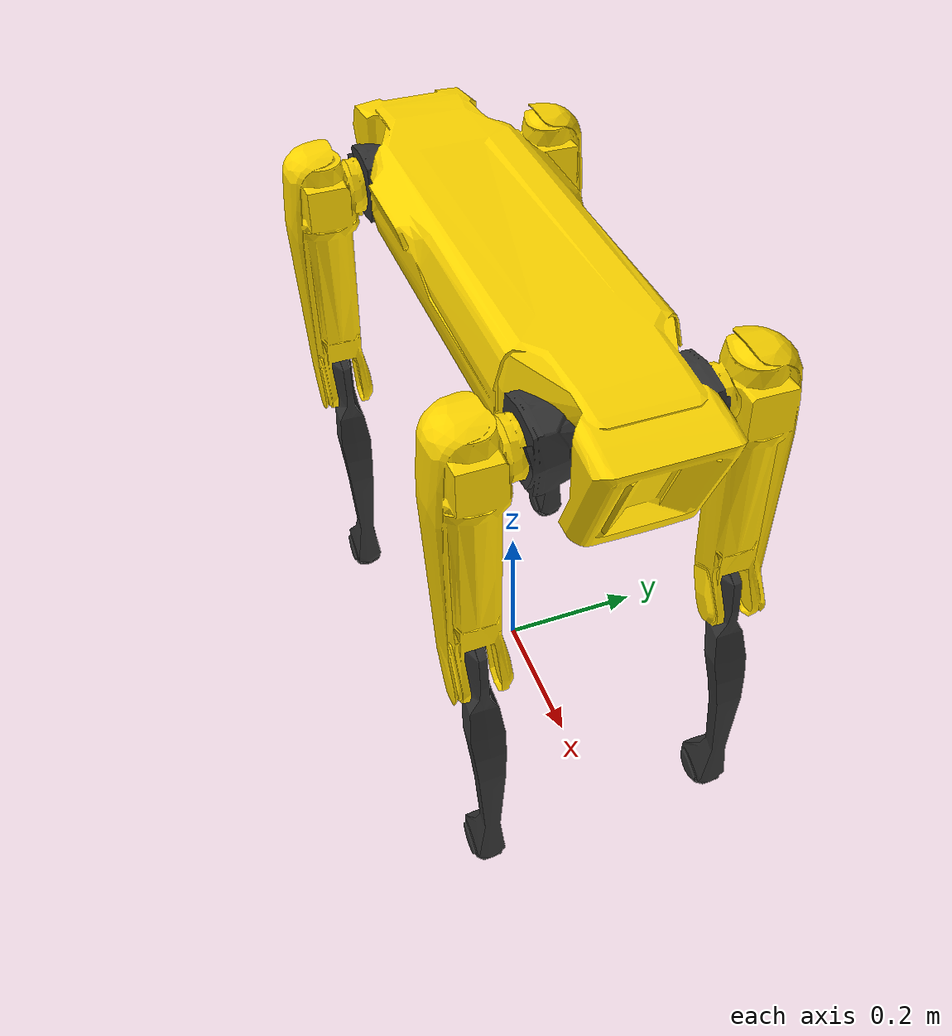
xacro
<?xml version="1.0"?>
<robot xmlns:xacro="http://www.ros.org/wiki/xacro" name="spot">

  <xacro:property name="wheel_radius" value="0.03"/>
  <xacro:property name="wheel_separation" value="0.335"/>
  <xacro:property name="caster_wheel_radius" value="${wheel_radius/2}"/>
  <xacro:property name="caster_wheel_mass" value="0.001"/>
  <xacro:property name="caster_wheel_joint_offset" value="0.3"/>
  <xacro:property name="wheel_offset" value="0.025"/>

  <xacro:macro name="default_inertial" params="mass">
    <inertial>
      <mass value="${mass}"/>
      <inertia ixx="1.0" ixy="0.0" ixz="0.0" iyy="1.0" iyz="0.0" izz="1.0"/>
    </inertial>
  </xacro:macro>

  <xacro:macro name="cylinder_inertia" params="m r h">
    <inertial>
      <mass value="${m}"/>
      <inertia ixx="${m*(3*r*r+h*h)/12}" ixy = "0" ixz = "0" iyy="${m*(3*r*r+h*h)/12}" iyz = "0" izz="${m*r*r/2}"/>
    </inertial>
  </xacro:macro>

  <xacro:macro name="sphere_inertia" params="m r">
    <inertial>
      <mass value="${m}"/>
      <inertia ixx="${2.0*m*(r*r)/5.0}" ixy="0.0" ixz="0.0" iyy="${2.0*m*(r*r)/5.0}" iyz="0.0" izz="${2.0*m*(r*r)/5.0}"/>
    </inertial>
  </xacro:macro>

  <link name="base_footprint">
    <xacro:default_inertial mass="32.5"/>
    <visual name="visual">
      <origin xyz="0 0 .655" rpy="0 0 0" />
      <geometry>
	      <mesh filename="package://spot_sim_description/meshes/spot_whole_body.dae" />
      </geometry>
    </visual>
    <collision>
      <origin xyz="0 0 .655" rpy="0 0 0" />
      <geometry>
	      <mesh filename="package://spot_sim_description/meshes/spot_whole_body.dae" />
      </geometry>
    </collision>
  </link>

  <xacro:macro name="wheel" params="prefix reflect">
    <link name="${prefix}_wheel">
      <collision>
        <origin xyz="0 0 0" rpy="${pi/2} 0 0"/>
        <geometry>
          <cylinder radius="${wheel_radius}" length="0.005"/>
        </geometry>
      </collision>
      <xacro:cylinder_inertia m="0.5" r="${wheel_radius}" h="0.005"/>
    </link>

    <joint name="${prefix}_wheel_joint" type="continuous">
      <axis xyz="0 1 0" rpy="0 0 0" />
      <parent link="base_footprint"/>
      <child link="${prefix}_wheel"/>
      <origin xyz="${wheel_offset} ${(wheel_separation/2)*reflect} -0.005" rpy="0 0 0"/>
    </joint>
  </xacro:macro>

  <xacro:wheel prefix="left" reflect="0.6"/>
  <xacro:wheel prefix="right" reflect="-0.6"/>

  <xacro:macro name="caster" params="prefix reflectH reflectV">
    <link name="${prefix}_caster_wheel">
      <collision>
        <origin xyz="0 0 0" rpy="0 0 0"/>
        <geometry>
          <sphere radius="${caster_wheel_radius}"/>
        </geometry>
      </collision>
      <xacro:sphere_inertia m="0.05" r="${caster_wheel_radius}"/>
    </link>

    <joint name="${prefix}_caster_wheel_joint" type="continuous">
      <axis xyz="0 1 0" rpy="0 0 0" />
      <parent link="base_footprint"/>
      <child link="${prefix}_caster_wheel"/>
      <origin xyz="${wheel_offset + caster_wheel_joint_offset*reflectV} ${wheel_separation/2*reflectH} -${caster_wheel_radius+0.005}" rpy="0 0 0"/>
    </joint>
  </xacro:macro>

  <xacro:caster prefix="back_left" reflectH="1" reflectV="-1"/>
  <xacro:caster prefix="back_right" reflectH="-1" reflectV="-1"/>

  <xacro:include filename="$(find spot_sim_description)/urdf/spot.plugins.xacro"/>

</robot>
